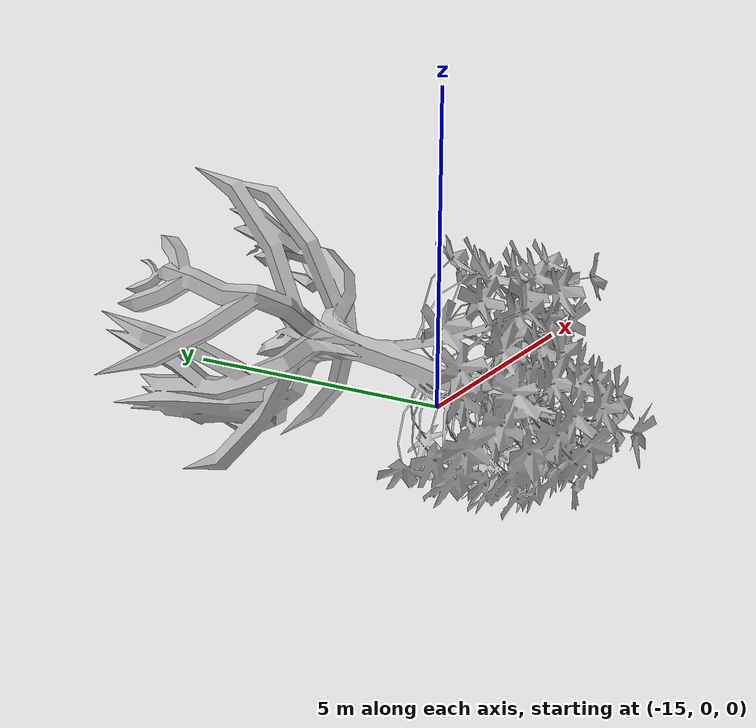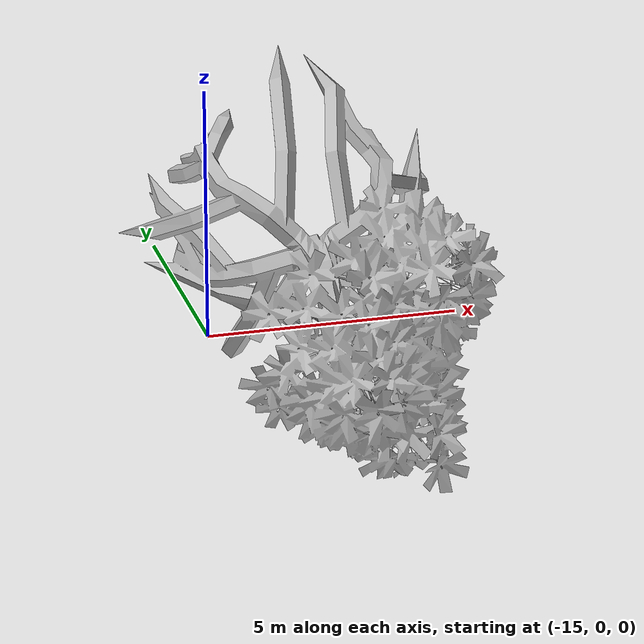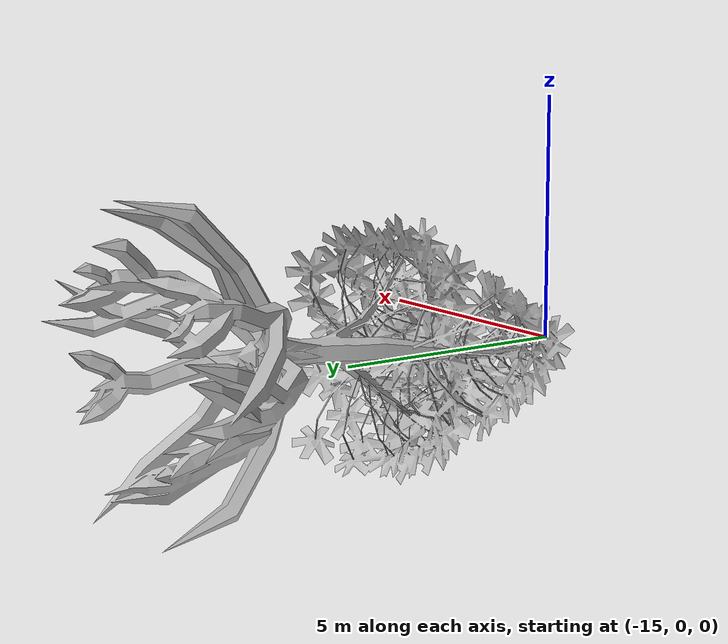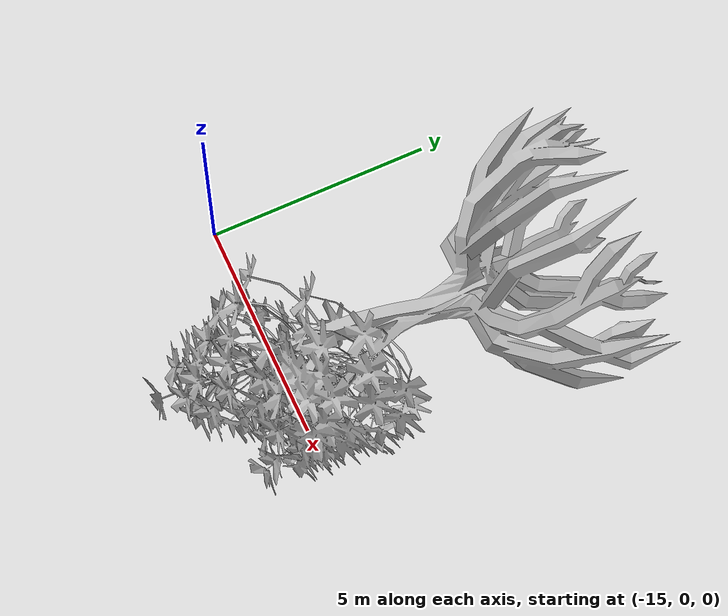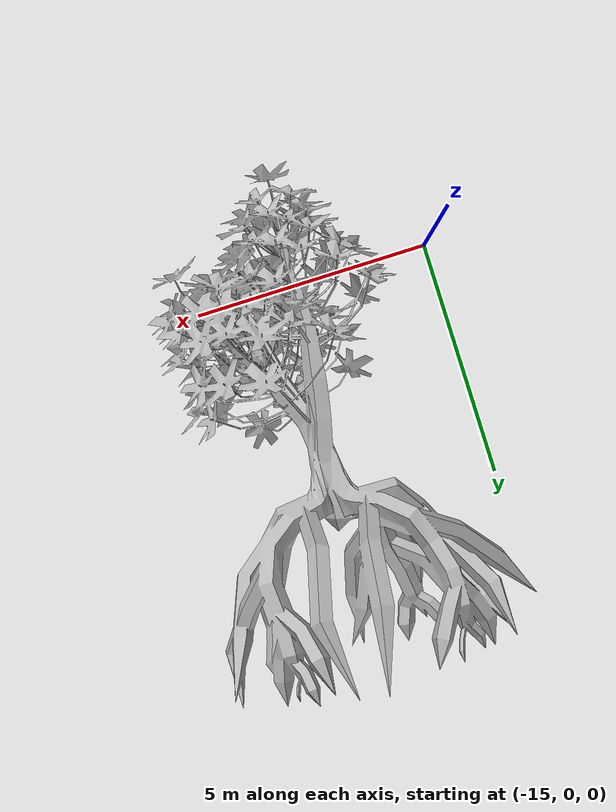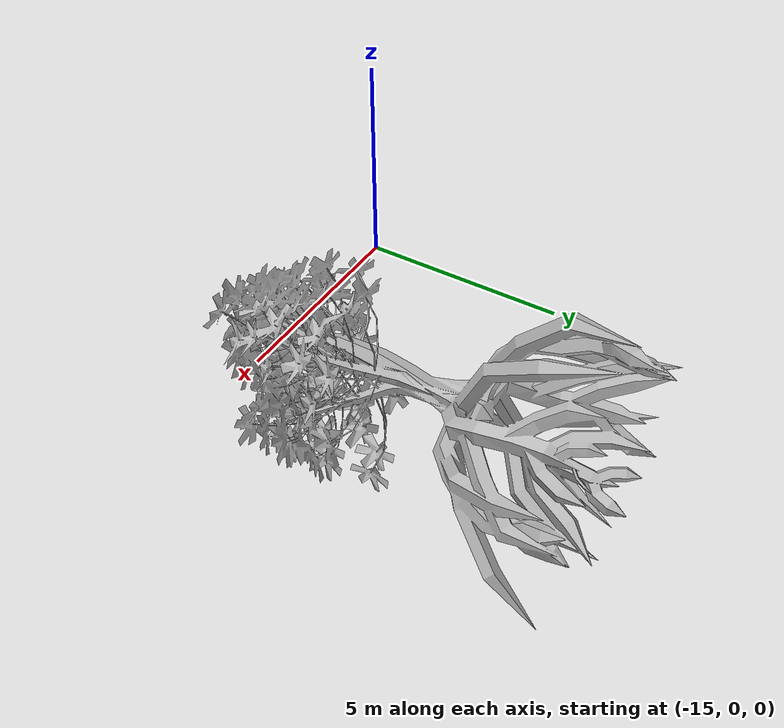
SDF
<?xml version="1.0" ?>
<sdf version="1.10">
  <model name="mangrove_04_11m">
    <pose>0 0 0 0 0 0</pose>
    <static>true</static>
    <link name="visual_only_link">
      <!-- Terrain at (14, 7) is approximately 0.03 m above world zero. -->
      <pose>-11.400 7.440 -0.20 1.5708 0 0</pose>
      <visual name="imported_mangrove_visual"><geometry><mesh><uri>model://mangrove_imported/meshes/Mangrovetree.glb</uri><scale>4.0 4.0 4.0</scale></mesh></geometry></visual>
    </link>
    <!-- The converted GLB mesh is the authoritative visual and collision geometry. -->
    <!-- A mesh collision is used so Gazebo physics and LiDAR can detect the tree shape. -->
    <link name="glb_collision_link">
      <pose>0 0 0.750 0 0 0</pose>
      <collision name="glb_mesh_collision">
        <geometry><cylinder><radius>1.0</radius><length>4.2</length></cylinder></geometry>
      </collision>
    </link>
  </model>
</sdf>
